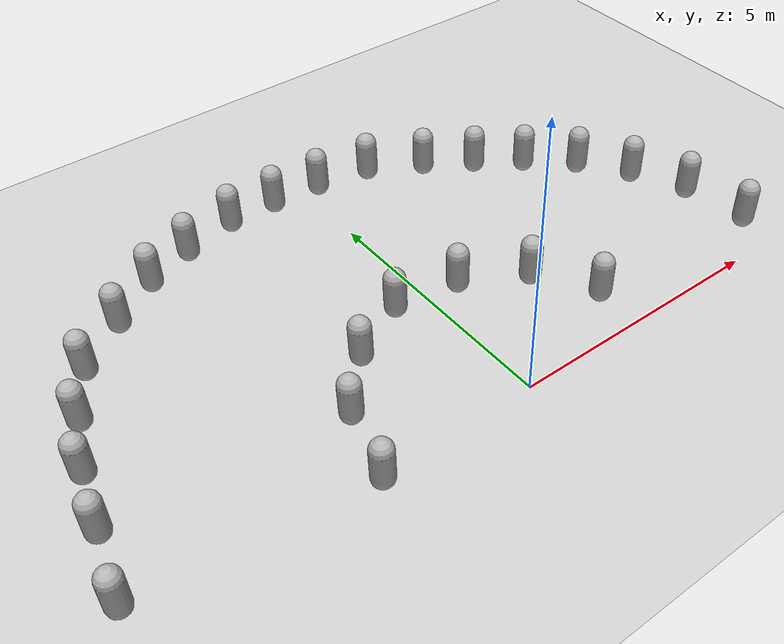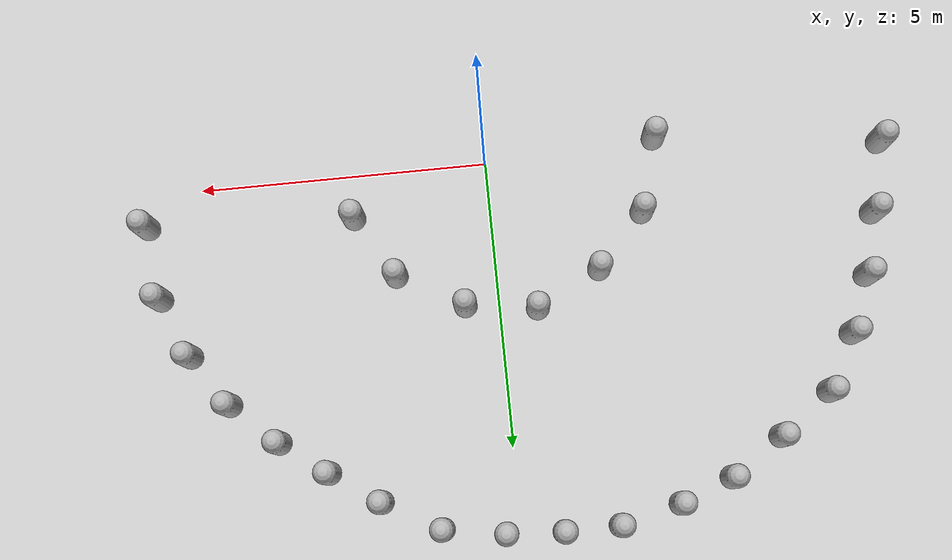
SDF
<sdf version="1.10">
 <world name="empty">
  <model name="ground_plane">
   <static>true</static>
   <link name="link">
    <collision name="collision">
     <geometry><plane><normal>0 0 1</normal><size>100 100</size></plane></geometry>
    </collision>
    <visual name="visual">
     <geometry><plane><normal>0 0 1</normal><size>100 100</size></plane></geometry>
     <material>
      <ambient>0.800000012 0.800000012 0.800000012 1</ambient>
      <diffuse>0.800000012 0.800000012 0.800000012 1</diffuse>
      <specular>0.800000012 0.800000012 0.800000012 1</specular>
     </material>
    </visual>
    <inertial>
     <mass>1</mass>
     <inertia><ixx>1</ixx><ixy>0</ixy><ixz>0</ixz><iyy>1</iyy><iyz>0</iyz><izz>1</izz></inertia>
    </inertial>
   </link>
  </model>
  <model name="capsule">
   <pose>-2.96055456880317 -0.11194700475309638 0.499999999902001 0 0 0</pose>
   <link name="capsule_link">
    <inertial>
     <inertia>
      <ixx>0.074153999999999998</ixx>
      <ixy>0</ixy>
      <ixz>0</ixz>
      <iyy>0.074153999999999998</iyy>
      <iyz>0</iyz>
      <izz>0.018769000000000001</izz>
     </inertia>
     <mass>1</mass>
    </inertial>
    <collision name="capsule_collision">
     <geometry>
      <capsule><radius>0.20000000000000001</radius><length>0.59999999999999998</length></capsule>
     </geometry>
    </collision>
    <visual name="capsule_visual">
     <geometry>
      <capsule><radius>0.20000000000000001</radius><length>0.59999999999999998</length></capsule>
     </geometry>
     <material>
      <ambient>0.300000012 0.300000012 0.300000012 1</ambient>
      <diffuse>0.699999988 0.699999988 0.699999988 1</diffuse>
      <specular>1 1 1 1</specular>
     </material>
    </visual>
   </link>
   <static>false</static>
  </model>
  <model name="capsule_1">
   <pose>-2.6115822680755709 1.191278408673039 0.499999999902001 0 0 0</pose>
   <link name="capsule_link">
    <inertial>
     <inertia>
      <ixx>0.074153999999999998</ixx>
      <ixy>0</ixy>
      <ixz>0</ixz>
      <iyy>0.074153999999999998</iyy>
      <iyz>0</iyz>
      <izz>0.018769000000000001</izz>
     </inertia>
     <mass>1</mass>
    </inertial>
    <collision name="capsule_collision">
     <geometry>
      <capsule><radius>0.20000000000000001</radius><length>0.59999999999999998</length></capsule>
     </geometry>
    </collision>
    <visual name="capsule_visual">
     <geometry>
      <capsule><radius>0.20000000000000001</radius><length>0.59999999999999998</length></capsule>
     </geometry>
     <material>
      <ambient>0.300000012 0.300000012 0.300000012 1</ambient>
      <diffuse>0.699999988 0.699999988 0.699999988 1</diffuse>
      <specular>1 1 1 1</specular>
     </material>
    </visual>
   </link>
   <static>false</static>
  </model>
  <model name="capsule_2">
   <pose>-1.7704313757227601 2.1223480045205716 0.499999999902001 0 0 0</pose>
   <link name="capsule_link">
    <inertial>
     <inertia>
      <ixx>0.074153999999999998</ixx>
      <ixy>0</ixy>
      <ixz>0</ixz>
      <iyy>0.074153999999999998</iyy>
      <iyz>0</iyz>
      <izz>0.018769000000000001</izz>
     </inertia>
     <mass>1</mass>
    </inertial>
    <collision name="capsule_collision">
     <geometry>
      <capsule><radius>0.20000000000000001</radius><length>0.59999999999999998</length></capsule>
     </geometry>
    </collision>
    <visual name="capsule_visual">
     <geometry>
      <capsule><radius>0.20000000000000001</radius><length>0.59999999999999998</length></capsule>
     </geometry>
     <material>
      <ambient>0.300000012 0.300000012 0.300000012 1</ambient>
      <diffuse>0.699999988 0.699999988 0.699999988 1</diffuse>
      <specular>1 1 1 1</specular>
     </material>
    </visual>
   </link>
   <static>false</static>
  </model>
  <model name="capsule_3">
   <pose>-0.65316347486085813 2.7016173573859912 0.499999999902001 0 0 0</pose>
   <link name="capsule_link">
    <inertial>
     <inertia>
      <ixx>0.074153999999999998</ixx>
      <ixy>0</ixy>
      <ixz>0</ixz>
      <iyy>0.074153999999999998</iyy>
      <iyz>0</iyz>
      <izz>0.018769000000000001</izz>
     </inertia>
     <mass>1</mass>
    </inertial>
    <collision name="capsule_collision">
     <geometry>
      <capsule><radius>0.20000000000000001</radius><length>0.59999999999999998</length></capsule>
     </geometry>
    </collision>
    <visual name="capsule_visual">
     <geometry>
      <capsule><radius>0.20000000000000001</radius><length>0.59999999999999998</length></capsule>
     </geometry>
     <material>
      <ambient>0.300000012 0.300000012 0.300000012 1</ambient>
      <diffuse>0.699999988 0.699999988 0.699999988 1</diffuse>
      <specular>1 1 1 1</specular>
     </material>
    </visual>
   </link>
   <static>false</static>
  </model>
  <model name="capsule_4">
   <pose>0.57220744166209592 2.5396919974262699 0.499999999902001 0 0 0</pose>
   <link name="capsule_link">
    <inertial>
     <inertia>
      <ixx>0.074153999999999998</ixx>
      <ixy>0</ixy>
      <ixz>0</ixz>
      <iyy>0.074153999999999998</iyy>
      <iyz>0</iyz>
      <izz>0.018769000000000001</izz>
     </inertia>
     <mass>1</mass>
    </inertial>
    <collision name="capsule_collision">
     <geometry>
      <capsule><radius>0.20000000000000001</radius><length>0.59999999999999998</length></capsule>
     </geometry>
    </collision>
    <visual name="capsule_visual">
     <geometry>
      <capsule><radius>0.20000000000000001</radius><length>0.59999999999999998</length></capsule>
     </geometry>
     <material>
      <ambient>0.300000012 0.300000012 0.300000012 1</ambient>
      <diffuse>0.699999988 0.699999988 0.699999988 1</diffuse>
      <specular>1 1 1 1</specular>
     </material>
    </visual>
   </link>
   <static>false</static>
  </model>
  <model name="capsule_5">
   <pose>1.7043739075834479 1.9118086003208608 0.499999999902001 0 0 0</pose>
   <link name="capsule_link">
    <inertial>
     <inertia>
      <ixx>0.074153999999999998</ixx>
      <ixy>0</ixy>
      <ixz>0</ixz>
      <iyy>0.074153999999999998</iyy>
      <iyz>0</iyz>
      <izz>0.018769000000000001</izz>
     </inertia>
     <mass>1</mass>
    </inertial>
    <collision name="capsule_collision">
     <geometry>
      <capsule><radius>0.20000000000000001</radius><length>0.59999999999999998</length></capsule>
     </geometry>
    </collision>
    <visual name="capsule_visual">
     <geometry>
      <capsule><radius>0.20000000000000001</radius><length>0.59999999999999998</length></capsule>
     </geometry>
     <material>
      <ambient>0.300000012 0.300000012 0.300000012 1</ambient>
      <diffuse>0.699999988 0.699999988 0.699999988 1</diffuse>
      <specular>1 1 1 1</specular>
     </material>
    </visual>
   </link>
   <static>false</static>
  </model>
  <model name="capsule_6">
   <pose>2.3487201199258925 0.82036312237179154 0.499999999902001 0 0 0</pose>
   <link name="capsule_link">
    <inertial>
     <inertia>
      <ixx>0.074153999999999998</ixx>
      <ixy>0</ixy>
      <ixz>0</ixz>
      <iyy>0.074153999999999998</iyy>
      <iyz>0</iyz>
      <izz>0.018769000000000001</izz>
     </inertia>
     <mass>1</mass>
    </inertial>
    <collision name="capsule_collision">
     <geometry>
      <capsule><radius>0.20000000000000001</radius><length>0.59999999999999998</length></capsule>
     </geometry>
    </collision>
    <visual name="capsule_visual">
     <geometry>
      <capsule><radius>0.20000000000000001</radius><length>0.59999999999999998</length></capsule>
     </geometry>
     <material>
      <ambient>0.300000012 0.300000012 0.300000012 1</ambient>
      <diffuse>0.699999988 0.699999988 0.699999988 1</diffuse>
      <specular>1 1 1 1</specular>
     </material>
    </visual>
   </link>
   <static>false</static>
  </model>
  <model name="capsule_30">
   <pose>-6.8765533091010571 0.34070839637230055 0.499999999902001 0 0 0</pose>
   <link name="capsule_link">
    <inertial>
     <inertia>
      <ixx>0.074153999999999998</ixx>
      <ixy>0</ixy>
      <ixz>0</ixz>
      <iyy>0.074153999999999998</iyy>
      <iyz>0</iyz>
      <izz>0.018769000000000001</izz>
     </inertia>
     <mass>1</mass>
    </inertial>
    <collision name="capsule_collision">
     <geometry>
      <capsule><radius>0.20000000000000001</radius><length>0.59999999999999998</length></capsule>
     </geometry>
    </collision>
    <visual name="capsule_visual">
     <geometry>
      <capsule><radius>0.20000000000000001</radius><length>0.59999999999999998</length></capsule>
     </geometry>
     <material>
      <ambient>0.300000012 0.300000012 0.300000012 1</ambient>
      <diffuse>0.699999988 0.699999988 0.699999988 1</diffuse>
      <specular>1 1 1 1</specular>
     </material>
    </visual>
   </link>
   <static>false</static>
  </model>
  <model name="capsule_31">
   <pose>-6.5836994047842863 1.5910678993190603 0.499999999902001 0 0 0</pose>
   <link name="capsule_link">
    <inertial>
     <inertia>
      <ixx>0.074153999999999998</ixx>
      <ixy>0</ixy>
      <ixz>0</ixz>
      <iyy>0.074153999999999998</iyy>
      <iyz>0</iyz>
      <izz>0.018769000000000001</izz>
     </inertia>
     <mass>1</mass>
    </inertial>
    <collision name="capsule_collision">
     <geometry>
      <capsule><radius>0.20000000000000001</radius><length>0.59999999999999998</length></capsule>
     </geometry>
    </collision>
    <visual name="capsule_visual">
     <geometry>
      <capsule><radius>0.20000000000000001</radius><length>0.59999999999999998</length></capsule>
     </geometry>
     <material>
      <ambient>0.300000012 0.300000012 0.300000012 1</ambient>
      <diffuse>0.699999988 0.699999988 0.699999988 1</diffuse>
      <specular>1 1 1 1</specular>
     </material>
    </visual>
   </link>
   <static>false</static>
  </model>
  <model name="capsule_35">
   <pose>5.9083130474739303 0.64495240213239535 0.499999999902001 0 0 0</pose>
   <link name="capsule_link">
    <inertial>
     <inertia>
      <ixx>0.074153999999999998</ixx>
      <ixy>0</ixy>
      <ixz>0</ixz>
      <iyy>0.074153999999999998</iyy>
      <iyz>0</iyz>
      <izz>0.018769000000000001</izz>
     </inertia>
     <mass>1</mass>
    </inertial>
    <collision name="capsule_collision">
     <geometry>
      <capsule><radius>0.20000000000000001</radius><length>0.59999999999999998</length></capsule>
     </geometry>
    </collision>
    <visual name="capsule_visual">
     <geometry>
      <capsule><radius>0.20000000000000001</radius><length>0.59999999999999998</length></capsule>
     </geometry>
     <material>
      <ambient>0.300000012 0.300000012 0.300000012 1</ambient>
      <diffuse>0.699999988 0.699999988 0.699999988 1</diffuse>
      <specular>1 1 1 1</specular>
     </material>
    </visual>
   </link>
   <static>false</static>
  </model>
  <model name="capsule_36">
   <pose>5.7497098649374241 1.9240378977027288 0.499999999902001 0 0 0</pose>
   <link name="capsule_link">
    <inertial>
     <inertia>
      <ixx>0.074153999999999998</ixx>
      <ixy>0</ixy>
      <ixz>0</ixz>
      <iyy>0.074153999999999998</iyy>
      <iyz>0</iyz>
      <izz>0.018769000000000001</izz>
     </inertia>
     <mass>1</mass>
    </inertial>
    <collision name="capsule_collision">
     <geometry>
      <capsule><radius>0.20000000000000001</radius><length>0.59999999999999998</length></capsule>
     </geometry>
    </collision>
    <visual name="capsule_visual">
     <geometry>
      <capsule><radius>0.20000000000000001</radius><length>0.59999999999999998</length></capsule>
     </geometry>
     <material>
      <ambient>0.300000012 0.300000012 0.300000012 1</ambient>
      <diffuse>0.699999988 0.699999988 0.699999988 1</diffuse>
      <specular>1 1 1 1</specular>
     </material>
    </visual>
   </link>
   <static>false</static>
  </model>
  <model name="capsule_37">
   <pose>5.2914771549015187 2.9615127540254407 0.499999999902001 0 0 0</pose>
   <link name="capsule_link">
    <inertial>
     <inertia>
      <ixx>0.074153999999999998</ixx>
      <ixy>0</ixy>
      <ixz>0</ixz>
      <iyy>0.074153999999999998</iyy>
      <iyz>0</iyz>
      <izz>0.018769000000000001</izz>
     </inertia>
     <mass>1</mass>
    </inertial>
    <collision name="capsule_collision">
     <geometry>
      <capsule><radius>0.20000000000000001</radius><length>0.59999999999999998</length></capsule>
     </geometry>
    </collision>
    <visual name="capsule_visual">
     <geometry>
      <capsule><radius>0.20000000000000001</radius><length>0.59999999999999998</length></capsule>
     </geometry>
     <material>
      <ambient>0.300000012 0.300000012 0.300000012 1</ambient>
      <diffuse>0.699999988 0.699999988 0.699999988 1</diffuse>
      <specular>1 1 1 1</specular>
     </material>
    </visual>
   </link>
   <static>false</static>
  </model>
  <model name="capsule_38">
   <pose>4.6779322270742165 3.8485662107240026 0.499999999902001 0 0 0</pose>
   <link name="capsule_link">
    <inertial>
     <inertia>
      <ixx>0.074153999999999998</ixx>
      <ixy>0</ixy>
      <ixz>0</ixz>
      <iyy>0.074153999999999998</iyy>
      <iyz>0</iyz>
      <izz>0.018769000000000001</izz>
     </inertia>
     <mass>1</mass>
    </inertial>
    <collision name="capsule_collision">
     <geometry>
      <capsule><radius>0.20000000000000001</radius><length>0.59999999999999998</length></capsule>
     </geometry>
    </collision>
    <visual name="capsule_visual">
     <geometry>
      <capsule><radius>0.20000000000000001</radius><length>0.59999999999999998</length></capsule>
     </geometry>
     <material>
      <ambient>0.300000012 0.300000012 0.300000012 1</ambient>
      <diffuse>0.699999988 0.699999988 0.699999988 1</diffuse>
      <specular>1 1 1 1</specular>
     </material>
    </visual>
   </link>
   <static>false</static>
  </model>
  <model name="capsule_39">
   <pose>3.8893215592907051 4.5633655808724809 0.499999999902001 0 0 0</pose>
   <link name="capsule_link">
    <inertial>
     <inertia>
      <ixx>0.074153999999999998</ixx>
      <ixy>0</ixy>
      <ixz>0</ixz>
      <iyy>0.074153999999999998</iyy>
      <iyz>0</iyz>
      <izz>0.018769000000000001</izz>
     </inertia>
     <mass>1</mass>
    </inertial>
    <collision name="capsule_collision">
     <geometry>
      <capsule><radius>0.20000000000000001</radius><length>0.59999999999999998</length></capsule>
     </geometry>
    </collision>
    <visual name="capsule_visual">
     <geometry>
      <capsule><radius>0.20000000000000001</radius><length>0.59999999999999998</length></capsule>
     </geometry>
     <material>
      <ambient>0.300000012 0.300000012 0.300000012 1</ambient>
      <diffuse>0.699999988 0.699999988 0.699999988 1</diffuse>
      <specular>1 1 1 1</specular>
     </material>
    </visual>
   </link>
   <static>false</static>
  </model>
  <model name="capsule_40">
   <pose>3.0984972411917928 5.1473561166357076 0.499999999902001 0 0 0</pose>
   <link name="capsule_link">
    <inertial>
     <inertia>
      <ixx>0.074153999999999998</ixx>
      <ixy>0</ixy>
      <ixz>0</ixz>
      <iyy>0.074153999999999998</iyy>
      <iyz>0</iyz>
      <izz>0.018769000000000001</izz>
     </inertia>
     <mass>1</mass>
    </inertial>
    <collision name="capsule_collision">
     <geometry>
      <capsule><radius>0.20000000000000001</radius><length>0.59999999999999998</length></capsule>
     </geometry>
    </collision>
    <visual name="capsule_visual">
     <geometry>
      <capsule><radius>0.20000000000000001</radius><length>0.59999999999999998</length></capsule>
     </geometry>
     <material>
      <ambient>0.300000012 0.300000012 0.300000012 1</ambient>
      <diffuse>0.699999988 0.699999988 0.699999988 1</diffuse>
      <specular>1 1 1 1</specular>
     </material>
    </visual>
   </link>
   <static>false</static>
  </model>
  <model name="capsule_41">
   <pose>2.2610879411131357 5.712453415177472 0.499999999902001 0 0 0</pose>
   <link name="capsule_link">
    <inertial>
     <inertia>
      <ixx>0.074153999999999998</ixx>
      <ixy>0</ixy>
      <ixz>0</ixz>
      <iyy>0.074153999999999998</iyy>
      <iyz>0</iyz>
      <izz>0.018769000000000001</izz>
     </inertia>
     <mass>1</mass>
    </inertial>
    <collision name="capsule_collision">
     <geometry>
      <capsule><radius>0.20000000000000001</radius><length>0.59999999999999998</length></capsule>
     </geometry>
    </collision>
    <visual name="capsule_visual">
     <geometry>
      <capsule><radius>0.20000000000000001</radius><length>0.59999999999999998</length></capsule>
     </geometry>
     <material>
      <ambient>0.300000012 0.300000012 0.300000012 1</ambient>
      <diffuse>0.699999988 0.699999988 0.699999988 1</diffuse>
      <specular>1 1 1 1</specular>
     </material>
    </visual>
   </link>
   <static>false</static>
  </model>
  <model name="capsule_42">
   <pose>-6.3127081217558088 2.6784734732213087 0.499999999902001 0 0 0</pose>
   <link name="capsule_link">
    <inertial>
     <inertia>
      <ixx>0.074153999999999998</ixx>
      <ixy>0</ixy>
      <ixz>0</ixz>
      <iyy>0.074153999999999998</iyy>
      <iyz>0</iyz>
      <izz>0.018769000000000001</izz>
     </inertia>
     <mass>1</mass>
    </inertial>
    <collision name="capsule_collision">
     <geometry>
      <capsule><radius>0.20000000000000001</radius><length>0.59999999999999998</length></capsule>
     </geometry>
    </collision>
    <visual name="capsule_visual">
     <geometry>
      <capsule><radius>0.20000000000000001</radius><length>0.59999999999999998</length></capsule>
     </geometry>
     <material>
      <ambient>0.300000012 0.300000012 0.300000012 1</ambient>
      <diffuse>0.699999988 0.699999988 0.699999988 1</diffuse>
      <specular>1 1 1 1</specular>
     </material>
    </visual>
   </link>
   <static>false</static>
  </model>
  <model name="capsule_43">
   <pose>-5.9279298587059577 3.652847395323203 0.499999999902001 0 0 0</pose>
   <link name="capsule_link">
    <inertial>
     <inertia>
      <ixx>0.074153999999999998</ixx>
      <ixy>0</ixy>
      <ixz>0</ixz>
      <iyy>0.074153999999999998</iyy>
      <iyz>0</iyz>
      <izz>0.018769000000000001</izz>
     </inertia>
     <mass>1</mass>
    </inertial>
    <collision name="capsule_collision">
     <geometry>
      <capsule><radius>0.20000000000000001</radius><length>0.59999999999999998</length></capsule>
     </geometry>
    </collision>
    <visual name="capsule_visual">
     <geometry>
      <capsule><radius>0.20000000000000001</radius><length>0.59999999999999998</length></capsule>
     </geometry>
     <material>
      <ambient>0.300000012 0.300000012 0.300000012 1</ambient>
      <diffuse>0.699999988 0.699999988 0.699999988 1</diffuse>
      <specular>1 1 1 1</specular>
     </material>
    </visual>
   </link>
   <static>false</static>
  </model>
  <model name="capsule_44">
   <pose>-5.4046976508958675 4.599637203108724 0.499999999902001 0 0 0</pose>
   <link name="capsule_link">
    <inertial>
     <inertia>
      <ixx>0.074153999999999998</ixx>
      <ixy>0</ixy>
      <ixz>0</ixz>
      <iyy>0.074153999999999998</iyy>
      <iyz>0</iyz>
      <izz>0.018769000000000001</izz>
     </inertia>
     <mass>1</mass>
    </inertial>
    <collision name="capsule_collision">
     <geometry>
      <capsule><radius>0.20000000000000001</radius><length>0.59999999999999998</length></capsule>
     </geometry>
    </collision>
    <visual name="capsule_visual">
     <geometry>
      <capsule><radius>0.20000000000000001</radius><length>0.59999999999999998</length></capsule>
     </geometry>
     <material>
      <ambient>0.300000012 0.300000012 0.300000012 1</ambient>
      <diffuse>0.699999988 0.699999988 0.699999988 1</diffuse>
      <specular>1 1 1 1</specular>
     </material>
    </visual>
   </link>
   <static>false</static>
  </model>
  <model name="capsule_45">
   <pose>-4.4965577910443155 5.2713234639453503 0.499999999902001 0 0 0</pose>
   <link name="capsule_link">
    <inertial>
     <inertia>
      <ixx>0.074153999999999998</ixx>
      <ixy>0</ixy>
      <ixz>0</ixz>
      <iyy>0.074153999999999998</iyy>
      <iyz>0</iyz>
      <izz>0.018769000000000001</izz>
     </inertia>
     <mass>1</mass>
    </inertial>
    <collision name="capsule_collision">
     <geometry>
      <capsule><radius>0.20000000000000001</radius><length>0.59999999999999998</length></capsule>
     </geometry>
    </collision>
    <visual name="capsule_visual">
     <geometry>
      <capsule><radius>0.20000000000000001</radius><length>0.59999999999999998</length></capsule>
     </geometry>
     <material>
      <ambient>0.300000012 0.300000012 0.300000012 1</ambient>
      <diffuse>0.699999988 0.699999988 0.699999988 1</diffuse>
      <specular>1 1 1 1</specular>
     </material>
    </visual>
   </link>
   <static>false</static>
  </model>
  <model name="capsule_46">
   <pose>-3.5913276315865454 5.8712797509314045 0.499999999902001 0 0 0</pose>
   <link name="capsule_link">
    <inertial>
     <inertia>
      <ixx>0.074153999999999998</ixx>
      <ixy>0</ixy>
      <ixz>0</ixz>
      <iyy>0.074153999999999998</iyy>
      <iyz>0</iyz>
      <izz>0.018769000000000001</izz>
     </inertia>
     <mass>1</mass>
    </inertial>
    <collision name="capsule_collision">
     <geometry>
      <capsule><radius>0.20000000000000001</radius><length>0.59999999999999998</length></capsule>
     </geometry>
    </collision>
    <visual name="capsule_visual">
     <geometry>
      <capsule><radius>0.20000000000000001</radius><length>0.59999999999999998</length></capsule>
     </geometry>
     <material>
      <ambient>0.300000012 0.300000012 0.300000012 1</ambient>
      <diffuse>0.699999988 0.699999988 0.699999988 1</diffuse>
      <specular>1 1 1 1</specular>
     </material>
    </visual>
   </link>
   <static>false</static>
  </model>
  <model name="capsule_47">
   <pose>-2.6887364831392748 6.2198643401668665 0.499999999902001 0 0 0</pose>
   <link name="capsule_link">
    <inertial>
     <inertia>
      <ixx>0.074153999999999998</ixx>
      <ixy>0</ixy>
      <ixz>0</ixz>
      <iyy>0.074153999999999998</iyy>
      <iyz>0</iyz>
      <izz>0.018769000000000001</izz>
     </inertia>
     <mass>1</mass>
    </inertial>
    <collision name="capsule_collision">
     <geometry>
      <capsule><radius>0.20000000000000001</radius><length>0.59999999999999998</length></capsule>
     </geometry>
    </collision>
    <visual name="capsule_visual">
     <geometry>
      <capsule><radius>0.20000000000000001</radius><length>0.59999999999999998</length></capsule>
     </geometry>
     <material>
      <ambient>0.300000012 0.300000012 0.300000012 1</ambient>
      <diffuse>0.699999988 0.699999988 0.699999988 1</diffuse>
      <specular>1 1 1 1</specular>
     </material>
    </visual>
   </link>
   <static>false</static>
  </model>
  <model name="capsule_48">
   <pose>-1.6550275319140255 6.4775202392408673 0.499999999902001 0 0 0</pose>
   <link name="capsule_link">
    <inertial>
     <inertia>
      <ixx>0.074153999999999998</ixx>
      <ixy>0</ixy>
      <ixz>0</ixz>
      <iyy>0.074153999999999998</iyy>
      <iyz>0</iyz>
      <izz>0.018769000000000001</izz>
     </inertia>
     <mass>1</mass>
    </inertial>
    <collision name="capsule_collision">
     <geometry>
      <capsule><radius>0.20000000000000001</radius><length>0.59999999999999998</length></capsule>
     </geometry>
    </collision>
    <visual name="capsule_visual">
     <geometry>
      <capsule><radius>0.20000000000000001</radius><length>0.59999999999999998</length></capsule>
     </geometry>
     <material>
      <ambient>0.300000012 0.300000012 0.300000012 1</ambient>
      <diffuse>0.699999988 0.699999988 0.699999988 1</diffuse>
      <specular>1 1 1 1</specular>
     </material>
    </visual>
   </link>
   <static>false</static>
  </model>
  <model name="capsule_49">
   <pose>-0.71440024887785736 6.4870277072852103 0.499999999902001 0 0 0</pose>
   <link name="capsule_link">
    <inertial>
     <inertia>
      <ixx>0.074153999999999998</ixx>
      <ixy>0</ixy>
      <ixz>0</ixz>
      <iyy>0.074153999999999998</iyy>
      <iyz>0</iyz>
      <izz>0.018769000000000001</izz>
     </inertia>
     <mass>1</mass>
    </inertial>
    <collision name="capsule_collision">
     <geometry>
      <capsule><radius>0.20000000000000001</radius><length>0.59999999999999998</length></capsule>
     </geometry>
    </collision>
    <visual name="capsule_visual">
     <geometry>
      <capsule><radius>0.20000000000000001</radius><length>0.59999999999999998</length></capsule>
     </geometry>
     <material>
      <ambient>0.300000012 0.300000012 0.300000012 1</ambient>
      <diffuse>0.699999988 0.699999988 0.699999988 1</diffuse>
      <specular>1 1 1 1</specular>
     </material>
    </visual>
   </link>
   <static>false</static>
  </model>
  <model name="capsule_50">
   <pose>0.2441264439852644 6.4296527196716724 0.499999999902001 0 0 0</pose>
   <link name="capsule_link">
    <inertial>
     <inertia>
      <ixx>0.074153999999999998</ixx>
      <ixy>0</ixy>
      <ixz>0</ixz>
      <iyy>0.074153999999999998</iyy>
      <iyz>0</iyz>
      <izz>0.018769000000000001</izz>
     </inertia>
     <mass>1</mass>
    </inertial>
    <collision name="capsule_collision">
     <geometry>
      <capsule><radius>0.20000000000000001</radius><length>0.59999999999999998</length></capsule>
     </geometry>
    </collision>
    <visual name="capsule_visual">
     <geometry>
      <capsule><radius>0.20000000000000001</radius><length>0.59999999999999998</length></capsule>
     </geometry>
     <material>
      <ambient>0.300000012 0.300000012 0.300000012 1</ambient>
      <diffuse>0.699999988 0.699999988 0.699999988 1</diffuse>
      <specular>1 1 1 1</specular>
     </material>
    </visual>
   </link>
   <static>false</static>
  </model>
  <model name="capsule_51">
   <pose>1.2872552936473416 6.2585733913089578 0.499999999902001 0 0 0</pose>
   <link name="capsule_link">
    <inertial>
     <inertia>
      <ixx>0.074153999999999998</ixx>
      <ixy>0</ixy>
      <ixz>0</ixz>
      <iyy>0.074153999999999998</iyy>
      <iyz>0</iyz>
      <izz>0.018769000000000001</izz>
     </inertia>
     <mass>1</mass>
    </inertial>
    <collision name="capsule_collision">
     <geometry>
      <capsule><radius>0.20000000000000001</radius><length>0.59999999999999998</length></capsule>
     </geometry>
    </collision>
    <visual name="capsule_visual">
     <geometry>
      <capsule><radius>0.20000000000000001</radius><length>0.59999999999999998</length></capsule>
     </geometry>
     <material>
      <ambient>0.300000012 0.300000012 0.300000012 1</ambient>
      <diffuse>0.699999988 0.699999988 0.699999988 1</diffuse>
      <specular>1 1 1 1</specular>
     </material>
    </visual>
   </link>
   <static>false</static>
  </model>
 </world>
</sdf>
